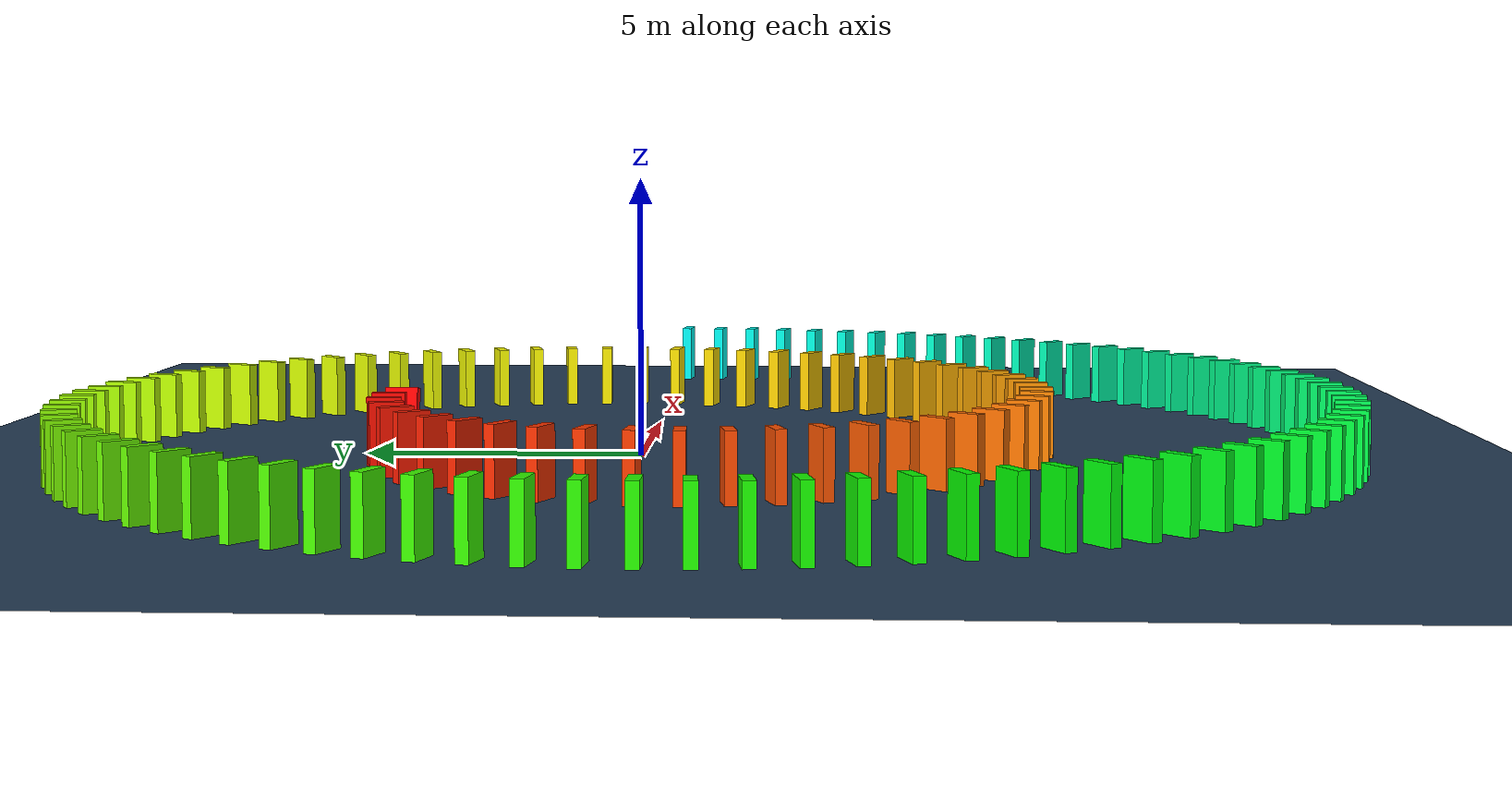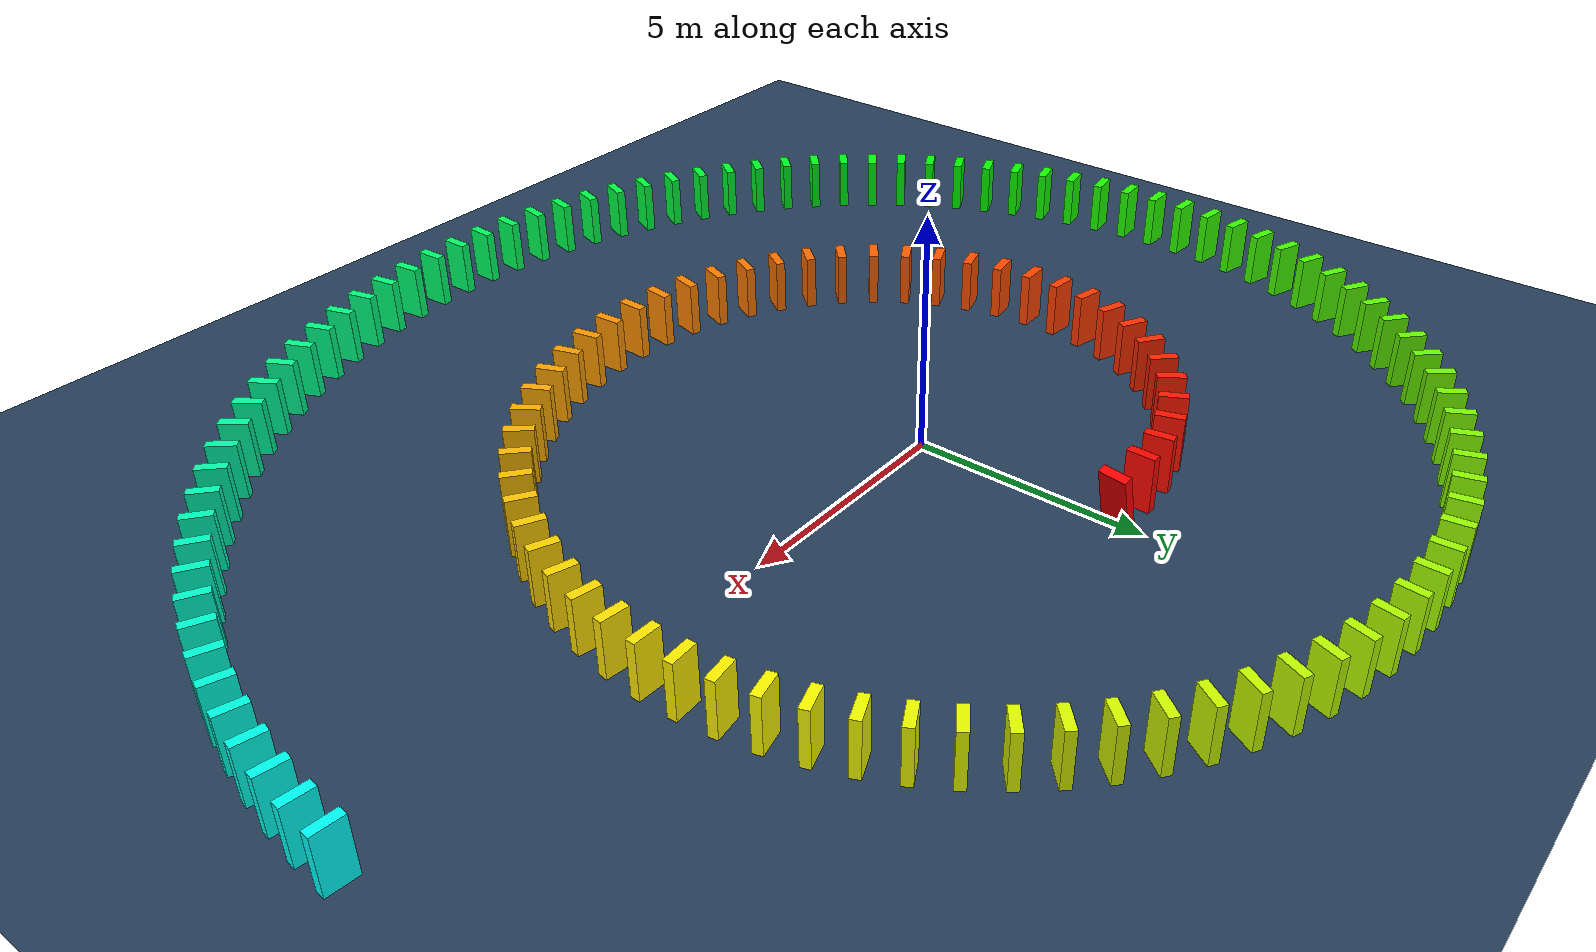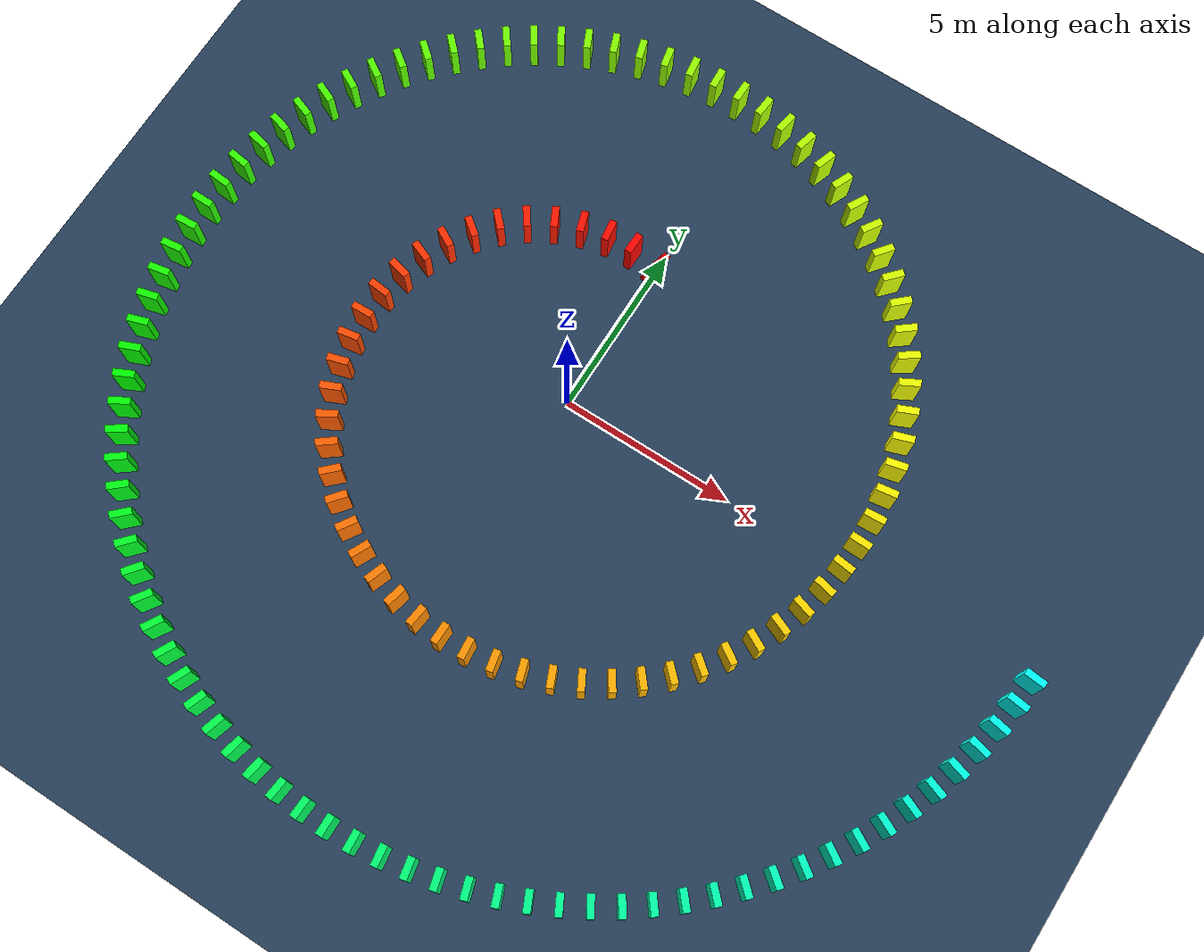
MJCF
<mujoco>
  <visual>
    <headlight diffuse="0.6 0.6 0.6" ambient="0.1 0.1 0.1" specular="0 0 0"/>
    <rgba haze="0.15 0.25 0.35 1"/>
    <global azimuth="120" elevation="-20"/>
  </visual>
  <asset>
    <texture type="skybox" builtin="gradient" rgb1="0.3 0.5 0.7" rgb2="0 0 0" width="512" height="3072"/>
    <texture type="2d" name="groundplane" builtin="checker" mark="edge" rgb1="0.2 0.3 0.4" rgb2="0.1 0.2 0.3" markrgb="0.8 0.8 0.8" width="300" height="300"/>
    <material name="groundplane" texture="groundplane" texuniform="true" texrepeat="5 5" reflectance="0.2"/>
  </asset>
  <worldbody>
    <light pos="0 0 1.5" dir="0 0 -1" directional="true"/>
    <geom name="floor" size="0 0 0.05" type="plane" material="groundplane"/>
    <body pos="0.0000 4.3750 0.6000" euler="0 15.0 173.7">
      <geom type="box" size="0.1000 0.3000 0.6000" rgba="1.000 0.000 0.000 1"/>
      <freejoint/>
    </body>
    <body pos="-0.7573 4.4584 0.6000" euler="0 0.0 178.6">
      <geom type="box" size="0.1000 0.3000 0.6000" rgba="1.000 0.022 0.000 1"/>
      <freejoint/>
    </body>
    <body pos="-1.5183 4.4112 0.6000" euler="0 0.0 -171.7">
      <geom type="box" size="0.1000 0.3000 0.6000" rgba="1.000 0.045 0.000 1"/>
      <freejoint/>
    </body>
    <body pos="-2.2611 4.2386 0.6000" euler="0 0.0 -162.3">
      <geom type="box" size="0.1000 0.3000 0.6000" rgba="1.000 0.067 0.000 1"/>
      <freejoint/>
    </body>
    <body pos="-2.9665 3.9489 0.6000" euler="0 0.0 -153.2">
      <geom type="box" size="0.1000 0.3000 0.6000" rgba="1.000 0.090 0.000 1"/>
      <freejoint/>
    </body>
    <body pos="-3.6180 3.5525 0.6000" euler="0 0.0 -144.3">
      <geom type="box" size="0.1000 0.3000 0.6000" rgba="1.000 0.112 0.000 1"/>
      <freejoint/>
    </body>
    <body pos="-4.2017 3.0616 0.6000" euler="0 0.0 -135.7">
      <geom type="box" size="0.1000 0.3000 0.6000" rgba="1.000 0.135 0.000 1"/>
      <freejoint/>
    </body>
    <body pos="-4.7061 2.4896 0.6000" euler="0 0.0 -127.2">
      <geom type="box" size="0.1000 0.3000 0.6000" rgba="1.000 0.157 0.000 1"/>
      <freejoint/>
    </body>
    <body pos="-5.1225 1.8506 0.6000" euler="0 0.0 -119.0">
      <geom type="box" size="0.1000 0.3000 0.6000" rgba="1.000 0.180 0.000 1"/>
      <freejoint/>
    </body>
    <body pos="-5.4444 1.1590 0.6000" euler="0 0.0 -111.0">
      <geom type="box" size="0.1000 0.3000 0.6000" rgba="1.000 0.202 0.000 1"/>
      <freejoint/>
    </body>
    <body pos="-5.6675 0.4296 0.6000" euler="0 0.0 -103.1">
      <geom type="box" size="0.1000 0.3000 0.6000" rgba="1.000 0.225 0.000 1"/>
      <freejoint/>
    </body>
    <body pos="-5.7898 -0.3233 0.6000" euler="0 0.0 -95.4">
      <geom type="box" size="0.1000 0.3000 0.6000" rgba="1.000 0.247 0.000 1"/>
      <freejoint/>
    </body>
    <body pos="-5.8111 -1.0858 0.6000" euler="0 0.0 -87.9">
      <geom type="box" size="0.1000 0.3000 0.6000" rgba="1.000 0.270 0.000 1"/>
      <freejoint/>
    </body>
    <body pos="-5.7330 -1.8447 0.6000" euler="0 0.0 -80.5">
      <geom type="box" size="0.1000 0.3000 0.6000" rgba="1.000 0.292 0.000 1"/>
      <freejoint/>
    </body>
    <body pos="-5.5587 -2.5873 0.6000" euler="0 0.0 -73.2">
      <geom type="box" size="0.1000 0.3000 0.6000" rgba="1.000 0.315 0.000 1"/>
      <freejoint/>
    </body>
    <body pos="-5.2926 -3.3023 0.6000" euler="0 0.0 -66.0">
      <geom type="box" size="0.1000 0.3000 0.6000" rgba="1.000 0.337 0.000 1"/>
      <freejoint/>
    </body>
    <body pos="-4.9404 -3.9791 0.6000" euler="0 0.0 -59.0">
      <geom type="box" size="0.1000 0.3000 0.6000" rgba="1.000 0.360 0.000 1"/>
      <freejoint/>
    </body>
    <body pos="-4.5088 -4.6082 0.6000" euler="0 0.0 -52.1">
      <geom type="box" size="0.1000 0.3000 0.6000" rgba="1.000 0.382 0.000 1"/>
      <freejoint/>
    </body>
    <body pos="-4.0053 -5.1814 0.6000" euler="0 0.0 -45.3">
      <geom type="box" size="0.1000 0.3000 0.6000" rgba="1.000 0.404 0.000 1"/>
      <freejoint/>
    </body>
    <body pos="-3.4380 -5.6915 0.6000" euler="0 0.0 -38.7">
      <geom type="box" size="0.1000 0.3000 0.6000" rgba="1.000 0.427 0.000 1"/>
      <freejoint/>
    </body>
    <body pos="-2.8156 -6.1328 0.6000" euler="0 0.0 -32.1">
      <geom type="box" size="0.1000 0.3000 0.6000" rgba="1.000 0.449 0.000 1"/>
      <freejoint/>
    </body>
    <body pos="-2.1470 -6.5004 0.6000" euler="0 0.0 -25.6">
      <geom type="box" size="0.1000 0.3000 0.6000" rgba="1.000 0.472 0.000 1"/>
      <freejoint/>
    </body>
    <body pos="-1.4414 -6.7906 0.6000" euler="0 0.0 -19.2">
      <geom type="box" size="0.1000 0.3000 0.6000" rgba="1.000 0.494 0.000 1"/>
      <freejoint/>
    </body>
    <body pos="-0.7080 -7.0011 0.6000" euler="0 0.0 -12.9">
      <geom type="box" size="0.1000 0.3000 0.6000" rgba="1.000 0.517 0.000 1"/>
      <freejoint/>
    </body>
    <body pos="0.0440 -7.1303 0.6000" euler="0 0.0 -6.7">
      <geom type="box" size="0.1000 0.3000 0.6000" rgba="1.000 0.539 0.000 1"/>
      <freejoint/>
    </body>
    <body pos="0.8055 -7.1778 0.6000" euler="0 0.0 -0.5">
      <geom type="box" size="0.1000 0.3000 0.6000" rgba="1.000 0.562 0.000 1"/>
      <freejoint/>
    </body>
    <body pos="1.5678 -7.1441 0.6000" euler="0 0.0 5.5">
      <geom type="box" size="0.1000 0.3000 0.6000" rgba="1.000 0.584 0.000 1"/>
      <freejoint/>
    </body>
    <body pos="2.3223 -7.0306 0.6000" euler="0 0.0 11.5">
      <geom type="box" size="0.1000 0.3000 0.6000" rgba="1.000 0.607 0.000 1"/>
      <freejoint/>
    </body>
    <body pos="3.0611 -6.8396 0.6000" euler="0 0.0 17.4">
      <geom type="box" size="0.1000 0.3000 0.6000" rgba="1.000 0.629 0.000 1"/>
      <freejoint/>
    </body>
    <body pos="3.7764 -6.5740 0.6000" euler="0 0.0 23.3">
      <geom type="box" size="0.1000 0.3000 0.6000" rgba="1.000 0.652 0.000 1"/>
      <freejoint/>
    </body>
    <body pos="4.4612 -6.2373 0.6000" euler="0 0.0 29.1">
      <geom type="box" size="0.1000 0.3000 0.6000" rgba="1.000 0.674 0.000 1"/>
      <freejoint/>
    </body>
    <body pos="5.1088 -5.8338 0.6000" euler="0 0.0 34.8">
      <geom type="box" size="0.1000 0.3000 0.6000" rgba="1.000 0.697 0.000 1"/>
      <freejoint/>
    </body>
    <body pos="5.7134 -5.3683 0.6000" euler="0 0.0 40.4">
      <geom type="box" size="0.1000 0.3000 0.6000" rgba="1.000 0.719 0.000 1"/>
      <freejoint/>
    </body>
    <body pos="6.2696 -4.8458 0.6000" euler="0 0.0 46.0">
      <geom type="box" size="0.1000 0.3000 0.6000" rgba="1.000 0.742 0.000 1"/>
      <freejoint/>
    </body>
    <body pos="6.7726 -4.2720 0.6000" euler="0 0.0 51.5">
      <geom type="box" size="0.1000 0.3000 0.6000" rgba="1.000 0.764 0.000 1"/>
      <freejoint/>
    </body>
    <body pos="7.2184 -3.6527 0.6000" euler="0 0.0 57.0">
      <geom type="box" size="0.1000 0.3000 0.6000" rgba="1.000 0.787 0.000 1"/>
      <freejoint/>
    </body>
    <body pos="7.6035 -2.9938 0.6000" euler="0 0.0 62.4">
      <geom type="box" size="0.1000 0.3000 0.6000" rgba="1.000 0.809 0.000 1"/>
      <freejoint/>
    </body>
    <body pos="7.9251 -2.3018 0.6000" euler="0 0.0 67.7">
      <geom type="box" size="0.1000 0.3000 0.6000" rgba="1.000 0.831 0.000 1"/>
      <freejoint/>
    </body>
    <body pos="8.1810 -1.5829 0.6000" euler="0 0.0 73.0">
      <geom type="box" size="0.1000 0.3000 0.6000" rgba="1.000 0.854 0.000 1"/>
      <freejoint/>
    </body>
    <body pos="8.3697 -0.8435 0.6000" euler="0 0.0 78.3">
      <geom type="box" size="0.1000 0.3000 0.6000" rgba="1.000 0.876 0.000 1"/>
      <freejoint/>
    </body>
    <body pos="8.4902 -0.0900 0.6000" euler="0 0.0 83.5">
      <geom type="box" size="0.1000 0.3000 0.6000" rgba="1.000 0.899 0.000 1"/>
      <freejoint/>
    </body>
    <body pos="8.5423 0.6714 0.6000" euler="0 0.0 88.7">
      <geom type="box" size="0.1000 0.3000 0.6000" rgba="1.000 0.921 0.000 1"/>
      <freejoint/>
    </body>
    <body pos="8.5261 1.4343 0.6000" euler="0 0.0 93.8">
      <geom type="box" size="0.1000 0.3000 0.6000" rgba="1.000 0.944 0.000 1"/>
      <freejoint/>
    </body>
    <body pos="8.4423 2.1929 0.6000" euler="0 0.0 98.8">
      <geom type="box" size="0.1000 0.3000 0.6000" rgba="1.000 0.966 0.000 1"/>
      <freejoint/>
    </body>
    <body pos="8.2922 2.9411 0.6000" euler="0 0.0 103.8">
      <geom type="box" size="0.1000 0.3000 0.6000" rgba="1.000 0.989 0.000 1"/>
      <freejoint/>
    </body>
    <body pos="8.0776 3.6734 0.6000" euler="0 0.0 108.8">
      <geom type="box" size="0.1000 0.3000 0.6000" rgba="0.989 1.000 0.000 1"/>
      <freejoint/>
    </body>
    <body pos="7.8005 4.3845 0.6000" euler="0 0.0 113.7">
      <geom type="box" size="0.1000 0.3000 0.6000" rgba="0.966 1.000 0.000 1"/>
      <freejoint/>
    </body>
    <body pos="7.4635 5.0692 0.6000" euler="0 0.0 118.6">
      <geom type="box" size="0.1000 0.3000 0.6000" rgba="0.944 1.000 0.000 1"/>
      <freejoint/>
    </body>
    <body pos="7.0697 5.7229 0.6000" euler="0 0.0 123.5">
      <geom type="box" size="0.1000 0.3000 0.6000" rgba="0.921 1.000 0.000 1"/>
      <freejoint/>
    </body>
    <body pos="6.6222 6.3410 0.6000" euler="0 0.0 128.3">
      <geom type="box" size="0.1000 0.3000 0.6000" rgba="0.899 1.000 0.000 1"/>
      <freejoint/>
    </body>
    <body pos="6.1246 6.9197 0.6000" euler="0 0.0 133.1">
      <geom type="box" size="0.1000 0.3000 0.6000" rgba="0.876 1.000 0.000 1"/>
      <freejoint/>
    </body>
    <body pos="5.5807 7.4551 0.6000" euler="0 0.0 137.8">
      <geom type="box" size="0.1000 0.3000 0.6000" rgba="0.854 1.000 0.000 1"/>
      <freejoint/>
    </body>
    <body pos="4.9947 7.9440 0.6000" euler="0 0.0 142.5">
      <geom type="box" size="0.1000 0.3000 0.6000" rgba="0.831 1.000 0.000 1"/>
      <freejoint/>
    </body>
    <body pos="4.3707 8.3834 0.6000" euler="0 0.0 147.2">
      <geom type="box" size="0.1000 0.3000 0.6000" rgba="0.809 1.000 0.000 1"/>
      <freejoint/>
    </body>
    <body pos="3.7132 8.7708 0.6000" euler="0 0.0 151.8">
      <geom type="box" size="0.1000 0.3000 0.6000" rgba="0.787 1.000 0.000 1"/>
      <freejoint/>
    </body>
    <body pos="3.0267 9.1041 0.6000" euler="0 0.0 156.4">
      <geom type="box" size="0.1000 0.3000 0.6000" rgba="0.764 1.000 0.000 1"/>
      <freejoint/>
    </body>
    <body pos="2.3157 9.3816 0.6000" euler="0 0.0 161.0">
      <geom type="box" size="0.1000 0.3000 0.6000" rgba="0.742 1.000 0.000 1"/>
      <freejoint/>
    </body>
    <body pos="1.5850 9.6019 0.6000" euler="0 0.0 165.5">
      <geom type="box" size="0.1000 0.3000 0.6000" rgba="0.719 1.000 0.000 1"/>
      <freejoint/>
    </body>
    <body pos="0.8392 9.7639 0.6000" euler="0 0.0 170.0">
      <geom type="box" size="0.1000 0.3000 0.6000" rgba="0.697 1.000 0.000 1"/>
      <freejoint/>
    </body>
    <body pos="0.0831 9.8673 0.6000" euler="0 0.0 174.4">
      <geom type="box" size="0.1000 0.3000 0.6000" rgba="0.674 1.000 0.000 1"/>
      <freejoint/>
    </body>
    <body pos="-0.6788 9.9116 0.6000" euler="0 0.0 178.9">
      <geom type="box" size="0.1000 0.3000 0.6000" rgba="0.652 1.000 0.000 1"/>
      <freejoint/>
    </body>
    <body pos="-1.4419 9.8972 0.6000" euler="0 0.0 -176.7">
      <geom type="box" size="0.1000 0.3000 0.6000" rgba="0.629 1.000 0.000 1"/>
      <freejoint/>
    </body>
    <body pos="-2.2016 9.8243 0.6000" euler="0 0.0 -172.3">
      <geom type="box" size="0.1000 0.3000 0.6000" rgba="0.607 1.000 0.000 1"/>
      <freejoint/>
    </body>
    <body pos="-2.9536 9.6939 0.6000" euler="0 0.0 -168.0">
      <geom type="box" size="0.1000 0.3000 0.6000" rgba="0.584 1.000 0.000 1"/>
      <freejoint/>
    </body>
    <body pos="-3.6935 9.5071 0.6000" euler="0 0.0 -163.7">
      <geom type="box" size="0.1000 0.3000 0.6000" rgba="0.562 1.000 0.000 1"/>
      <freejoint/>
    </body>
    <body pos="-4.4174 9.2653 0.6000" euler="0 0.0 -159.4">
      <geom type="box" size="0.1000 0.3000 0.6000" rgba="0.539 1.000 0.000 1"/>
      <freejoint/>
    </body>
    <body pos="-5.1212 8.9701 0.6000" euler="0 0.0 -155.1">
      <geom type="box" size="0.1000 0.3000 0.6000" rgba="0.517 1.000 0.000 1"/>
      <freejoint/>
    </body>
    <body pos="-5.8013 8.6237 0.6000" euler="0 0.0 -150.9">
      <geom type="box" size="0.1000 0.3000 0.6000" rgba="0.494 1.000 0.000 1"/>
      <freejoint/>
    </body>
    <body pos="-6.4539 8.2280 0.6000" euler="0 0.0 -146.7">
      <geom type="box" size="0.1000 0.3000 0.6000" rgba="0.472 1.000 0.000 1"/>
      <freejoint/>
    </body>
    <body pos="-7.0759 7.7857 0.6000" euler="0 0.0 -142.5">
      <geom type="box" size="0.1000 0.3000 0.6000" rgba="0.449 1.000 0.000 1"/>
      <freejoint/>
    </body>
    <body pos="-7.6640 7.2993 0.6000" euler="0 0.0 -138.3">
      <geom type="box" size="0.1000 0.3000 0.6000" rgba="0.427 1.000 0.000 1"/>
      <freejoint/>
    </body>
    <body pos="-8.2155 6.7717 0.6000" euler="0 0.0 -134.2">
      <geom type="box" size="0.1000 0.3000 0.6000" rgba="0.404 1.000 0.000 1"/>
      <freejoint/>
    </body>
    <body pos="-8.7276 6.2057 0.6000" euler="0 0.0 -130.1">
      <geom type="box" size="0.1000 0.3000 0.6000" rgba="0.382 1.000 0.000 1"/>
      <freejoint/>
    </body>
    <body pos="-9.1979 5.6047 0.6000" euler="0 0.0 -126.0">
      <geom type="box" size="0.1000 0.3000 0.6000" rgba="0.360 1.000 0.000 1"/>
      <freejoint/>
    </body>
    <body pos="-9.6243 4.9717 0.6000" euler="0 0.0 -121.9">
      <geom type="box" size="0.1000 0.3000 0.6000" rgba="0.337 1.000 0.000 1"/>
      <freejoint/>
    </body>
    <body pos="-10.0050 4.3102 0.6000" euler="0 0.0 -117.9">
      <geom type="box" size="0.1000 0.3000 0.6000" rgba="0.315 1.000 0.000 1"/>
      <freejoint/>
    </body>
    <body pos="-10.3383 3.6236 0.6000" euler="0 0.0 -113.9">
      <geom type="box" size="0.1000 0.3000 0.6000" rgba="0.292 1.000 0.000 1"/>
      <freejoint/>
    </body>
    <body pos="-10.6228 2.9153 0.6000" euler="0 0.0 -109.9">
      <geom type="box" size="0.1000 0.3000 0.6000" rgba="0.270 1.000 0.000 1"/>
      <freejoint/>
    </body>
    <body pos="-10.8574 2.1891 0.6000" euler="0 0.0 -105.9">
      <geom type="box" size="0.1000 0.3000 0.6000" rgba="0.247 1.000 0.000 1"/>
      <freejoint/>
    </body>
    <body pos="-11.0412 1.4483 0.6000" euler="0 0.0 -102.0">
      <geom type="box" size="0.1000 0.3000 0.6000" rgba="0.225 1.000 0.000 1"/>
      <freejoint/>
    </body>
    <body pos="-11.1738 0.6967 0.6000" euler="0 0.0 -98.0">
      <geom type="box" size="0.1000 0.3000 0.6000" rgba="0.202 1.000 0.000 1"/>
      <freejoint/>
    </body>
    <body pos="-11.2547 -0.0622 0.6000" euler="0 0.0 -94.1">
      <geom type="box" size="0.1000 0.3000 0.6000" rgba="0.180 1.000 0.000 1"/>
      <freejoint/>
    </body>
    <body pos="-11.2838 -0.8249 0.6000" euler="0 0.0 -90.2">
      <geom type="box" size="0.1000 0.3000 0.6000" rgba="0.157 1.000 0.000 1"/>
      <freejoint/>
    </body>
    <body pos="-11.2612 -1.5878 0.6000" euler="0 0.0 -86.4">
      <geom type="box" size="0.1000 0.3000 0.6000" rgba="0.135 1.000 0.000 1"/>
      <freejoint/>
    </body>
    <body pos="-11.1874 -2.3475 0.6000" euler="0 0.0 -82.5">
      <geom type="box" size="0.1000 0.3000 0.6000" rgba="0.112 1.000 0.000 1"/>
      <freejoint/>
    </body>
    <body pos="-11.0629 -3.1005 0.6000" euler="0 0.0 -78.7">
      <geom type="box" size="0.1000 0.3000 0.6000" rgba="0.090 1.000 0.000 1"/>
      <freejoint/>
    </body>
    <body pos="-10.8886 -3.8436 0.6000" euler="0 0.0 -74.9">
      <geom type="box" size="0.1000 0.3000 0.6000" rgba="0.067 1.000 0.000 1"/>
      <freejoint/>
    </body>
    <body pos="-10.6654 -4.5734 0.6000" euler="0 0.0 -71.1">
      <geom type="box" size="0.1000 0.3000 0.6000" rgba="0.045 1.000 0.000 1"/>
      <freejoint/>
    </body>
    <body pos="-10.3946 -5.2870 0.6000" euler="0 0.0 -67.3">
      <geom type="box" size="0.1000 0.3000 0.6000" rgba="0.022 1.000 0.000 1"/>
      <freejoint/>
    </body>
    <body pos="-10.0775 -5.9813 0.6000" euler="0 0.0 -63.6">
      <geom type="box" size="0.1000 0.3000 0.6000" rgba="0.000 1.000 0.000 1"/>
      <freejoint/>
    </body>
    <body pos="-9.7158 -6.6534 0.6000" euler="0 0.0 -59.9">
      <geom type="box" size="0.1000 0.3000 0.6000" rgba="0.000 1.000 0.022 1"/>
      <freejoint/>
    </body>
    <body pos="-9.3112 -7.3006 0.6000" euler="0 0.0 -56.1">
      <geom type="box" size="0.1000 0.3000 0.6000" rgba="0.000 1.000 0.045 1"/>
      <freejoint/>
    </body>
    <body pos="-8.8657 -7.9203 0.6000" euler="0 0.0 -52.4">
      <geom type="box" size="0.1000 0.3000 0.6000" rgba="0.000 1.000 0.067 1"/>
      <freejoint/>
    </body>
    <body pos="-8.3811 -8.5100 0.6000" euler="0 0.0 -48.8">
      <geom type="box" size="0.1000 0.3000 0.6000" rgba="0.000 1.000 0.090 1"/>
      <freejoint/>
    </body>
    <body pos="-7.8598 -9.0675 0.6000" euler="0 0.0 -45.1">
      <geom type="box" size="0.1000 0.3000 0.6000" rgba="0.000 1.000 0.112 1"/>
      <freejoint/>
    </body>
    <body pos="-7.3040 -9.5906 0.6000" euler="0 0.0 -41.4">
      <geom type="box" size="0.1000 0.3000 0.6000" rgba="0.000 1.000 0.135 1"/>
      <freejoint/>
    </body>
    <body pos="-6.7162 -10.0774 0.6000" euler="0 0.0 -37.8">
      <geom type="box" size="0.1000 0.3000 0.6000" rgba="0.000 1.000 0.157 1"/>
      <freejoint/>
    </body>
    <body pos="-6.0988 -10.5262 0.6000" euler="0 0.0 -34.2">
      <geom type="box" size="0.1000 0.3000 0.6000" rgba="0.000 1.000 0.180 1"/>
      <freejoint/>
    </body>
    <body pos="-5.4544 -10.9352 0.6000" euler="0 0.0 -30.6">
      <geom type="box" size="0.1000 0.3000 0.6000" rgba="0.000 1.000 0.202 1"/>
      <freejoint/>
    </body>
    <body pos="-4.7856 -11.3031 0.6000" euler="0 0.0 -27.0">
      <geom type="box" size="0.1000 0.3000 0.6000" rgba="0.000 1.000 0.225 1"/>
      <freejoint/>
    </body>
    <body pos="-4.0953 -11.6286 0.6000" euler="0 0.0 -23.5">
      <geom type="box" size="0.1000 0.3000 0.6000" rgba="0.000 1.000 0.247 1"/>
      <freejoint/>
    </body>
    <body pos="-3.3860 -11.9106 0.6000" euler="0 0.0 -19.9">
      <geom type="box" size="0.1000 0.3000 0.6000" rgba="0.000 1.000 0.270 1"/>
      <freejoint/>
    </body>
    <body pos="-2.6607 -12.1483 0.6000" euler="0 0.0 -16.4">
      <geom type="box" size="0.1000 0.3000 0.6000" rgba="0.000 1.000 0.292 1"/>
      <freejoint/>
    </body>
    <body pos="-1.9222 -12.3409 0.6000" euler="0 0.0 -12.9">
      <geom type="box" size="0.1000 0.3000 0.6000" rgba="0.000 1.000 0.315 1"/>
      <freejoint/>
    </body>
    <body pos="-1.1732 -12.4880 0.6000" euler="0 0.0 -9.4">
      <geom type="box" size="0.1000 0.3000 0.6000" rgba="0.000 1.000 0.337 1"/>
      <freejoint/>
    </body>
    <body pos="-0.4167 -12.5891 0.6000" euler="0 0.0 -5.9">
      <geom type="box" size="0.1000 0.3000 0.6000" rgba="0.000 1.000 0.360 1"/>
      <freejoint/>
    </body>
    <body pos="0.3446 -12.6442 0.6000" euler="0 0.0 -2.4">
      <geom type="box" size="0.1000 0.3000 0.6000" rgba="0.000 1.000 0.382 1"/>
      <freejoint/>
    </body>
    <body pos="1.1078 -12.6530 0.6000" euler="0 0.0 1.1">
      <geom type="box" size="0.1000 0.3000 0.6000" rgba="0.000 1.000 0.404 1"/>
      <freejoint/>
    </body>
    <body pos="1.8702 -12.6160 0.6000" euler="0 0.0 4.5">
      <geom type="box" size="0.1000 0.3000 0.6000" rgba="0.000 1.000 0.427 1"/>
      <freejoint/>
    </body>
    <body pos="2.6290 -12.5332 0.6000" euler="0 0.0 7.9">
      <geom type="box" size="0.1000 0.3000 0.6000" rgba="0.000 1.000 0.449 1"/>
      <freejoint/>
    </body>
    <body pos="3.3814 -12.4053 0.6000" euler="0 0.0 11.4">
      <geom type="box" size="0.1000 0.3000 0.6000" rgba="0.000 1.000 0.472 1"/>
      <freejoint/>
    </body>
    <body pos="4.1250 -12.2329 0.6000" euler="0 0.0 14.8">
      <geom type="box" size="0.1000 0.3000 0.6000" rgba="0.000 1.000 0.494 1"/>
      <freejoint/>
    </body>
    <body pos="4.8570 -12.0168 0.6000" euler="0 0.0 18.1">
      <geom type="box" size="0.1000 0.3000 0.6000" rgba="0.000 1.000 0.517 1"/>
      <freejoint/>
    </body>
    <body pos="5.5750 -11.7578 0.6000" euler="0 0.0 21.5">
      <geom type="box" size="0.1000 0.3000 0.6000" rgba="0.000 1.000 0.539 1"/>
      <freejoint/>
    </body>
    <body pos="6.2765 -11.4571 0.6000" euler="0 0.0 24.9">
      <geom type="box" size="0.1000 0.3000 0.6000" rgba="0.000 1.000 0.562 1"/>
      <freejoint/>
    </body>
    <body pos="6.9593 -11.1159 0.6000" euler="0 0.0 28.2">
      <geom type="box" size="0.1000 0.3000 0.6000" rgba="0.000 1.000 0.584 1"/>
      <freejoint/>
    </body>
    <body pos="7.6209 -10.7354 0.6000" euler="0 0.0 31.6">
      <geom type="box" size="0.1000 0.3000 0.6000" rgba="0.000 1.000 0.607 1"/>
      <freejoint/>
    </body>
    <body pos="8.2594 -10.3171 0.6000" euler="0 0.0 34.9">
      <geom type="box" size="0.1000 0.3000 0.6000" rgba="0.000 1.000 0.629 1"/>
      <freejoint/>
    </body>
    <body pos="8.8726 -9.8626 0.6000" euler="0 0.0 38.2">
      <geom type="box" size="0.1000 0.3000 0.6000" rgba="0.000 1.000 0.652 1"/>
      <freejoint/>
    </body>
    <body pos="9.4586 -9.3735 0.6000" euler="0 0.0 41.5">
      <geom type="box" size="0.1000 0.3000 0.6000" rgba="0.000 1.000 0.674 1"/>
      <freejoint/>
    </body>
    <body pos="10.0155 -8.8516 0.6000" euler="0 0.0 44.8">
      <geom type="box" size="0.1000 0.3000 0.6000" rgba="0.000 1.000 0.697 1"/>
      <freejoint/>
    </body>
    <body pos="10.5417 -8.2987 0.6000" euler="0 0.0 48.1">
      <geom type="box" size="0.1000 0.3000 0.6000" rgba="0.000 1.000 0.719 1"/>
      <freejoint/>
    </body>
    <body pos="11.0355 -7.7166 0.6000" euler="0 0.0 51.3">
      <geom type="box" size="0.1000 0.3000 0.6000" rgba="0.000 1.000 0.742 1"/>
      <freejoint/>
    </body>
    <body pos="11.4955 -7.1075 0.6000" euler="0 0.0 54.6">
      <geom type="box" size="0.1000 0.3000 0.6000" rgba="0.000 1.000 0.764 1"/>
      <freejoint/>
    </body>
    <body pos="11.9202 -6.4733 0.6000" euler="0 0.0 57.8">
      <geom type="box" size="0.1000 0.3000 0.6000" rgba="0.000 1.000 0.787 1"/>
      <freejoint/>
    </body>
    <body pos="12.3086 -5.8162 0.6000" euler="0 0.0 61.0">
      <geom type="box" size="0.1000 0.3000 0.6000" rgba="0.000 1.000 0.809 1"/>
      <freejoint/>
    </body>
    <body pos="12.6594 -5.1384 0.6000" euler="0 0.0 64.2">
      <geom type="box" size="0.1000 0.3000 0.6000" rgba="0.000 1.000 0.831 1"/>
      <freejoint/>
    </body>
    <body pos="12.9718 -4.4419 0.6000" euler="0 0.0 67.4">
      <geom type="box" size="0.1000 0.3000 0.6000" rgba="0.000 1.000 0.854 1"/>
      <freejoint/>
    </body>
    <body pos="13.2448 -3.7291 0.6000" euler="0 0.0 70.6">
      <geom type="box" size="0.1000 0.3000 0.6000" rgba="0.000 1.000 0.876 1"/>
      <freejoint/>
    </body>
    <body pos="13.4778 -3.0023 0.6000" euler="0 0.0 73.8">
      <geom type="box" size="0.1000 0.3000 0.6000" rgba="0.000 1.000 0.899 1"/>
      <freejoint/>
    </body>
    <body pos="13.6702 -2.2637 0.6000" euler="0 0.0 77.0">
      <geom type="box" size="0.1000 0.3000 0.6000" rgba="0.000 1.000 0.921 1"/>
      <freejoint/>
    </body>
    <body pos="13.8216 -1.5155 0.6000" euler="0 0.0 80.1">
      <geom type="box" size="0.1000 0.3000 0.6000" rgba="0.000 1.000 0.944 1"/>
      <freejoint/>
    </body>
    <body pos="13.9316 -0.7602 0.6000" euler="0 0.0 83.3">
      <geom type="box" size="0.1000 0.3000 0.6000" rgba="0.000 1.000 0.966 1"/>
      <freejoint/>
    </body>
    <body pos="14.0000 -0.0000 0.6000" euler="0 0.0 84.9">
      <geom type="box" size="0.1000 0.3000 0.6000" rgba="0.000 1.000 0.989 1"/>
      <freejoint/>
    </body>
  </worldbody>
</mujoco>
